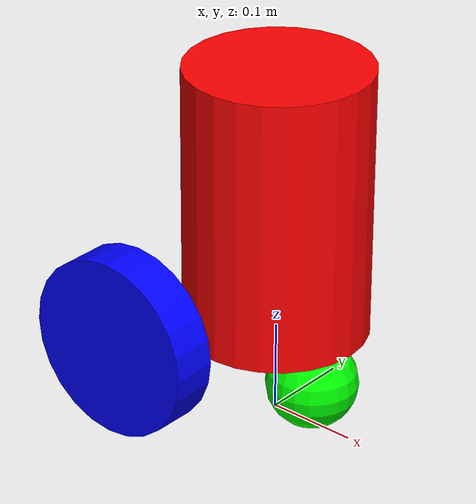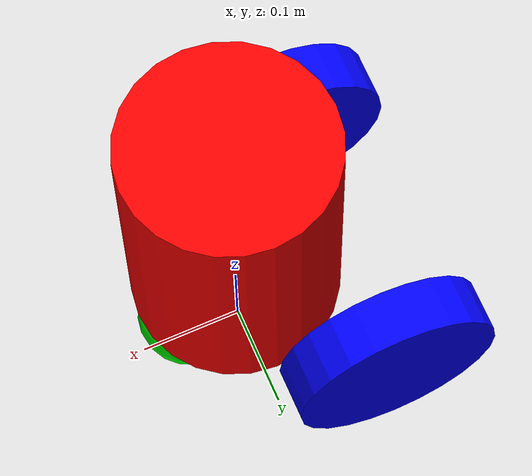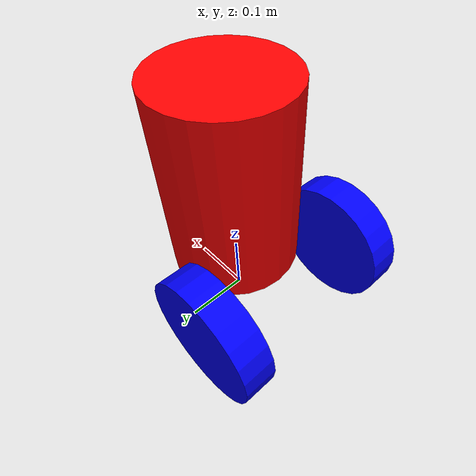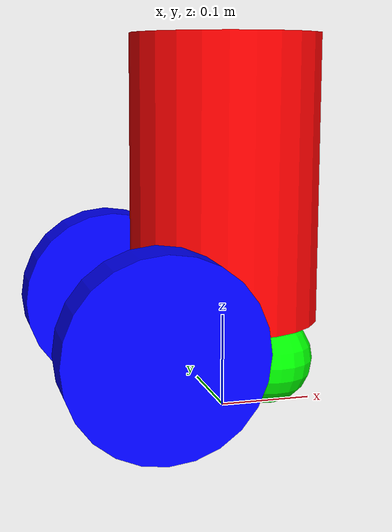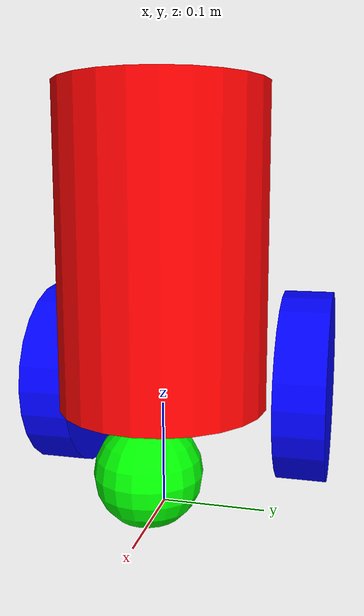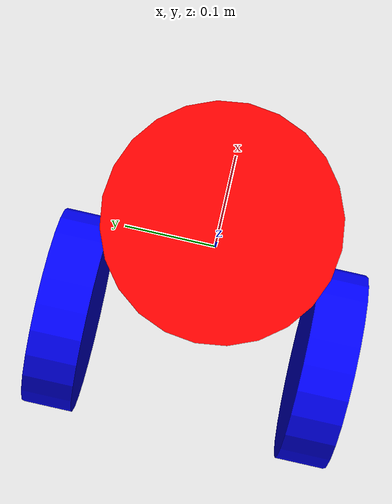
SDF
<?xml version='1.0'?>
<sdf version='1.4'>
  <model name="riss_bot">
    <!--if true this robot will be ignored by the physics engine-->
    <static>false</static>
    <link name='chassis'>
      <pose>0 0 .25 0 0 0</pose>
      <collision name='collision'>
	<geometry>
	  <cylinder>
            <radius>.1</radius>
            <length>.3</length>
          </cylinder>
	</geometry>
      </collision>
      <visual name='visual'>
	<geometry>
	  <cylinder>
            <radius>.1</radius>
            <length>.3</length>
          </cylinder>
	</geometry>
	<material>
	  <ambient>1 0 0 1</ambient>
	  <diffuse>1 0 0 1</diffuse>
	  <specular>0.1 0.1 0.1 1</specular>
	  <emissive>0 0 0 0</emissive>
	</material>
      </visual>
      <collision name='caster_collision'>
        <pose>0.05 0 -0.2  0 0 0</pose>
        <geometry>
          <sphere>
            <radius>.05</radius>
          </sphere>
        </geometry>
        <surface>
          <friction>
            <ode>
              <mu>0</mu>
              <mu2>0</mu2>
              <slip1>1.0</slip1>
              <slip2>1.0</slip2>
            </ode>
          </friction>
        </surface>
      </collision>
      <visual name='caster_visual'>
        <pose>0.05 0 -0.2 0 0 0</pose>
        <geometry>
          <sphere>
            <radius>.05</radius>
          </sphere>
        </geometry>
	<material>
	  <ambient>0 1 0 1</ambient>
	  <diffuse>0 1 0 1</diffuse>
	  <specular>0.1 0.1 0.1 1</specular>
	  <emissive>0 0 0 0</emissive>
	</material>
      </visual>
    </link>
    <link name="left_wheel">
      <pose>-0.1 0.13 0.1 0 1.5707 1.5707</pose>
      <collision name="collision">
        <geometry>
          <cylinder>
            <radius>.1</radius>
            <length>.05</length>
          </cylinder>
        </geometry>
      </collision>

      <visual name="visual">
        <geometry>
          <cylinder>
            <radius>.1</radius>
            <length>.05</length>
          </cylinder>
        </geometry>
	<material>
	  <ambient>0 0 1 1</ambient>
	  <diffuse>0 0 1 1</diffuse>
	  <specular>0.1 0.1 0.1 1</specular>
	  <emissive>0 0 0 0</emissive>
	</material>
      </visual>
    </link>

    <link name="right_wheel">
      <pose>-0.1 -0.13 0.1 0 1.5707 1.5707</pose>
      <collision name="collision">
        <geometry>
          <cylinder>
            <radius>.1</radius>
            <length>.05</length>
          </cylinder>
        </geometry>
      </collision>
      <visual name="visual">
        <geometry>
          <cylinder>
            <radius>.1</radius>
            <length>.05</length>
          </cylinder>
        </geometry>
	<material>
	  <ambient>0 0 1 1</ambient>
	  <diffuse>0 0 1 1</diffuse>
	  <specular>0.1 0.1 0.1 1</specular>
	  <emissive>0 0 0 0</emissive>
	</material>
      </visual>
    </link>
    <joint type="revolute" name="left_wheel_hinge">
      <pose>0 0 -0.03 0 0 0</pose>
      <child>left_wheel</child>
      <parent>chassis</parent>
      <axis>
        <xyz>0 1 0</xyz>
      </axis>
    </joint>
    <joint type="revolute" name="right_wheel_hinge">
      <pose>0 0 0.03 0 0 0</pose>
      <child>right_wheel</child>
      <parent>chassis</parent>
      <axis>
        <xyz>0 1 0</xyz>
      </axis>
    </joint>
    <plugin name="differential_drive_controller" filename="libgazebo_ros_diff_drive.so">
      <alwaysOn>true</alwaysOn>
      <updateRate>20</updateRate>
      <leftJoint>left_wheel_hinge</leftJoint>
      <rightJoint>right_wheel_hinge</rightJoint>
      <wheelSeparation>0.4</wheelSeparation>
      <wheelDiameter>0.1</wheelDiameter>
      <torque>20</torque>
      <commandTopic>cmd_vel</commandTopic>
      <odometryTopic>odom</odometryTopic>
      <odometryFrame>odom</odometryFrame>
      <robotBaseFrame>base_footprint</robotBaseFrame>
    </plugin>
  </model>
</sdf>
